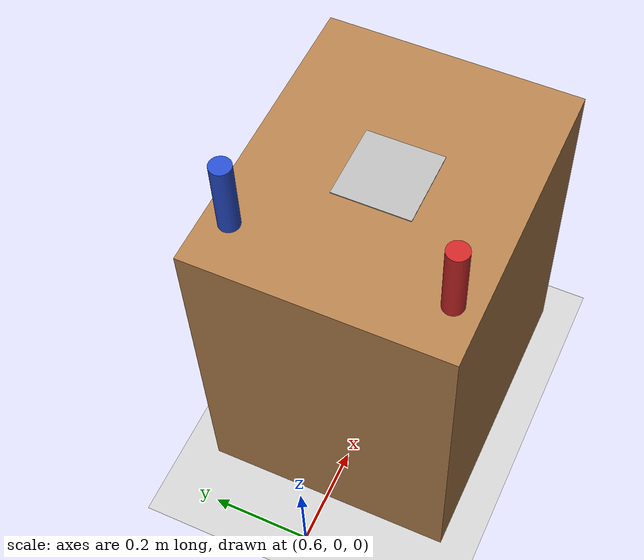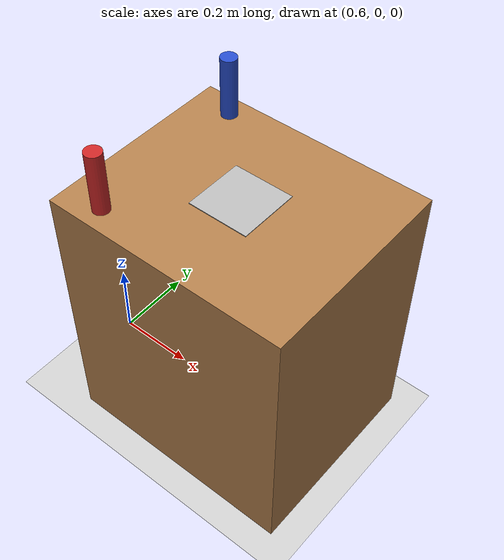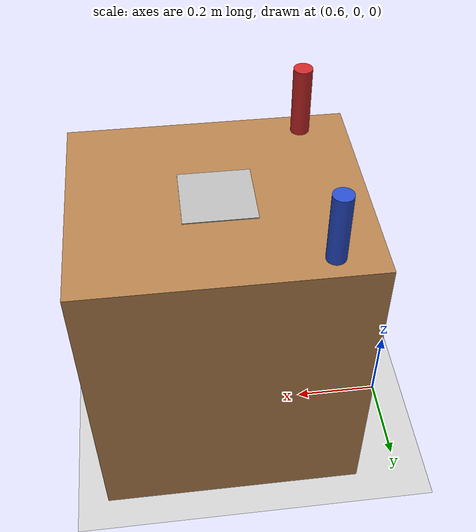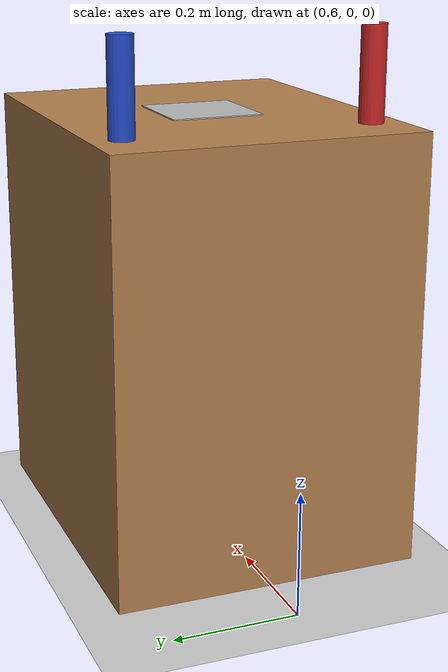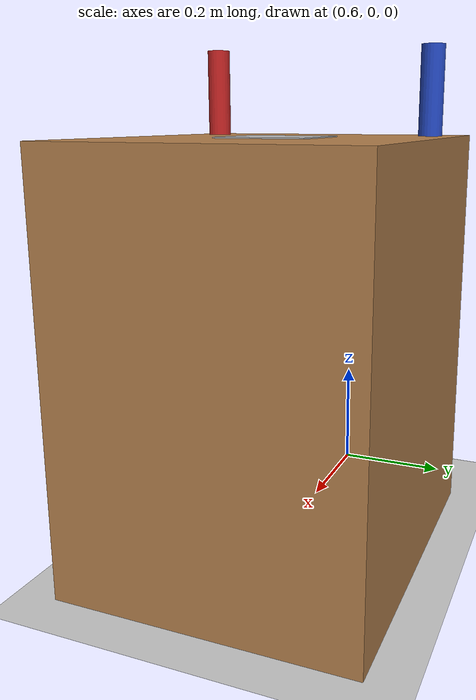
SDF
<?xml version="1.0" ?>

<sdf version="1.4">
  <world name="bimanual_manipulation_world">

    <!-- ================================================================
         PHYSICS: identical to no_obstacle.world.
    ================================================================ -->
    <physics type="ode">
      <gravity>0 0 -9.81</gravity>
      <ode>
        <solver>
          <type>quick</type>
          <iters>150</iters>
          <sor>1.3</sor>
        </solver>
        <constraints>
          <cfm>0.0</cfm>
          <erp>0.5</erp>
          <contact_max_correcting_vel>2.0</contact_max_correcting_vel>
          <contact_surface_layer>0.001</contact_surface_layer>
        </constraints>
      </ode>
      <real_time_update_rate>1000</real_time_update_rate>
      <max_step_size>0.001</max_step_size>
    </physics>

    <plugin name="ros2_linkattacher" filename="libgazebo_link_attacher.so"/>

    <!-- Standard illumination and ground -->
    <include><uri>model://sun</uri></include>
    <include><uri>model://ground_plane</uri></include>

    <model name="work_table">
      <static>true</static>
      <pose>1.000 0.0 0.35 0 0 0</pose>
      <link name="link">
        <collision name="col">
          <geometry><box><size>0.6 0.5 0.7</size></box></geometry>
          <surface>
            <contact>
              <ode>
                <kp>1000000</kp>
                <kd>100</kd>
                <max_vel>0.5</max_vel>
                <min_depth>0.001</min_depth>
              </ode>
            </contact>
            <friction><ode><mu>0.8</mu><mu2>0.8</mu2></ode></friction>
          </surface>
        </collision>
        <visual name="vis">
          <geometry><box><size>0.6 0.5 0.7</size></box></geometry>
          <material>
            <script>
              <uri>file://media/materials/scripts/gazebo.material</uri>
              <name>Gazebo/Wood</name>
            </script>
          </material>
        </visual>
      </link>
    </model>

    <model name="red_cylinder">
      <static>false</static>
      <pose>0.800 -0.20 0.775 0 0 0</pose>
      <link name="link">
        <inertial>
          <pose>0 0 0 0 0 0</pose>
          <mass>0.15</mass>
          <inertia>
            <ixx>0.000309</ixx>
            <iyy>0.000309</iyy>
            <izz>0.000030</izz>
            <ixy>0</ixy><ixz>0</ixz><iyz>0</iyz>
          </inertia>
        </inertial>
        <collision name="col">
          <geometry><cylinder><radius>0.02</radius><length>0.15</length></cylinder></geometry>
          <surface>
            <contact>
              <ode>
                <soft_cfm>0.0</soft_cfm>
                <soft_erp>0.5</soft_erp>
                <kp>20000</kp>
                <kd>50</kd>
                <max_vel>1.0</max_vel>
                <min_depth>0.001</min_depth>
              </ode>
            </contact>
            <friction><ode><mu>0.6</mu><mu2>0.6</mu2></ode></friction>
          </surface>
        </collision>
        <visual name="vis">
          <geometry><cylinder><radius>0.02</radius><length>0.15</length></cylinder></geometry>
          <material><script><uri>file://media/materials/scripts/gazebo.material</uri><name>Gazebo/Red</name></script></material>
        </visual>
      </link>
    </model>

    <model name="blue_cylinder">
      <static>false</static>
      <pose>0.800 0.20 0.775 0 0 0</pose>
      <link name="link">
        <inertial>
          <pose>0 0 0 0 0 0</pose>
          <mass>0.15</mass>
          <inertia>
            <ixx>0.000309</ixx>
            <iyy>0.000309</iyy>
            <izz>0.000030</izz>
            <ixy>0</ixy><ixz>0</ixz><iyz>0</iyz>
          </inertia>
        </inertial>
        <collision name="col">
          <geometry><cylinder><radius>0.02</radius><length>0.15</length></cylinder></geometry>
          <surface>
            <contact>
              <ode>
                <soft_cfm>0.0</soft_cfm>
                <soft_erp>0.5</soft_erp>
                <kp>20000</kp>
                <kd>50</kd>
                <max_vel>1.0</max_vel>
                <min_depth>0.001</min_depth>
              </ode>
            </contact>
            <friction><ode><mu>0.6</mu><mu2>0.6</mu2></ode></friction>
          </surface>
        </collision>
        <visual name="vis">
          <geometry><cylinder><radius>0.02</radius><length>0.15</length></cylinder></geometry>
          <material><script><uri>file://media/materials/scripts/gazebo.material</uri><name>Gazebo/Blue</name></script></material>
        </visual>
      </link>
    </model>

    <include>
      <uri>model://apriltag36_11_00</uri>
      <name>apriltag36_11_00</name>
      <pose>1.000 0.0 0.701 0 0 0</pose>
    </include>

  </world>
</sdf>

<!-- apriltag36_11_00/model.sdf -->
<sdf version="1.6">
  <model name="apriltag36_11_00">
    <static>true</static>
    <link name="link">
      <visual name="visual">
        <cast_shadows>false</cast_shadows>
        <geometry>
          <box><size>0.15 0.15 0.002</size></box>
        </geometry>
        <material>
          <script>
            <uri>model://apriltag36_11_00/materials/scripts</uri>
            <uri>model://apriltag36_11_00/materials/textures</uri>
            <name>AprilTag36_11_00</name>
          </script>
        </material>
      </visual>
    </link>
  </model>
</sdf>
